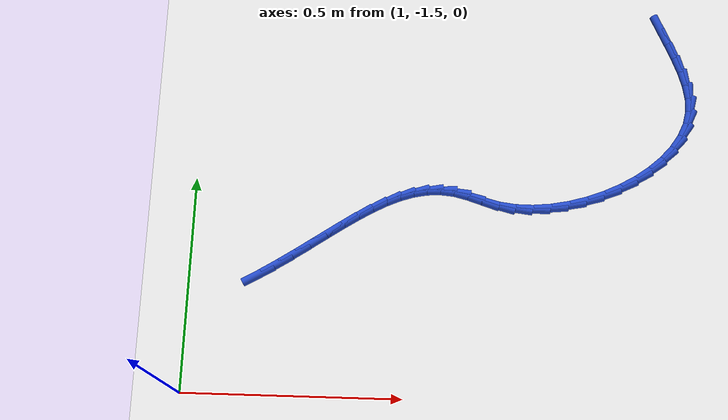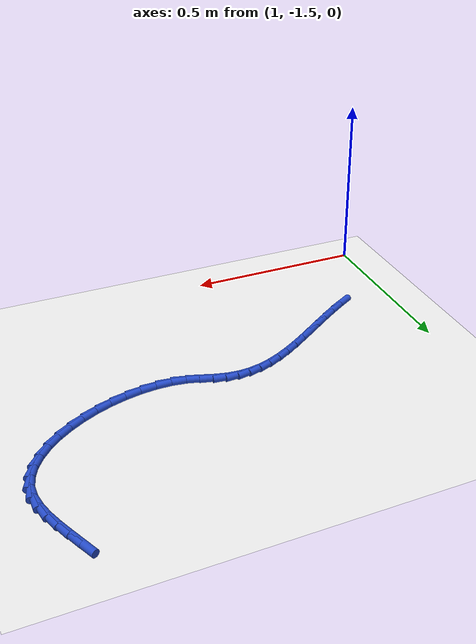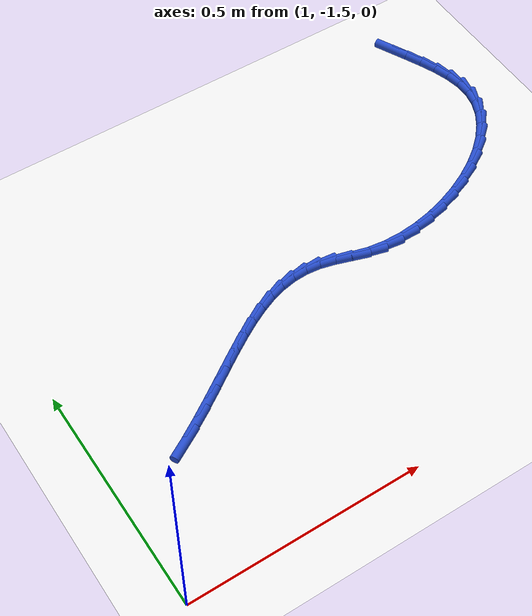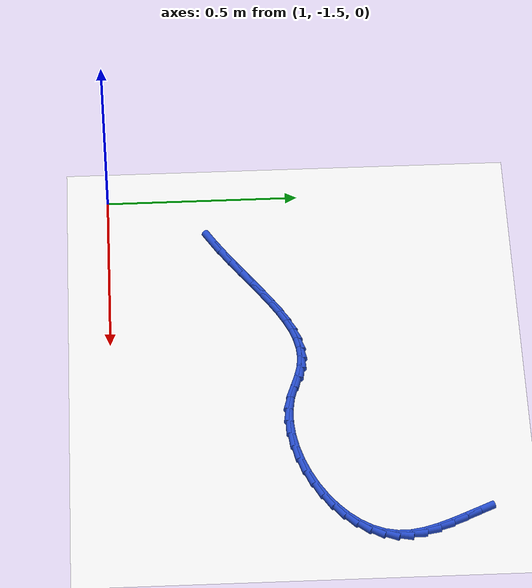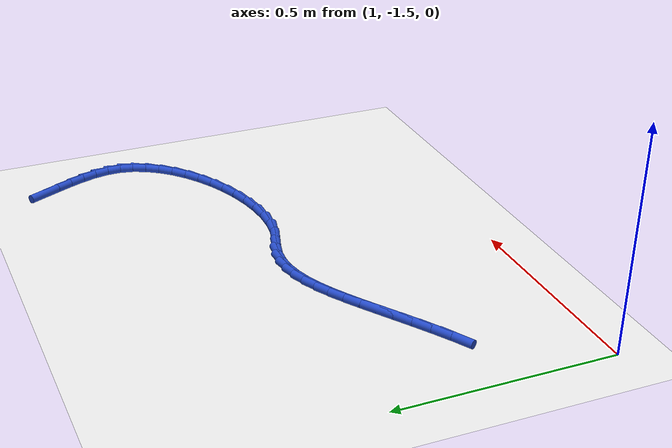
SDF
<sdf version="1.6">
 <world name="default">
  <model name="ground_plane">
   <static>1</static>
   <link name="link">
    <collision name="collision">
     <geometry><plane><normal>0 0 1</normal><size>100 100</size></plane></geometry>
     <surface><friction><ode><mu>100</mu><mu2>50</mu2></ode></friction></surface>
    </collision>
    <visual name="visual">
     <cast_shadows>0</cast_shadows>
     <geometry><plane><normal>0 0 1</normal><size>100 100</size></plane></geometry>
     <material>
      <script><uri>file://media/materials/scripts/gazebo.material</uri><name>Gazebo/WhiteGlow</name></script>
     </material>
    </visual>
   </link>
  </model>
  <model name="line">
   <link name="link_130">
    <pose>2.089215972137951 -0.5968230778722998 0.01 0 1.57 -1.1241798583666875</pose>
    <collision name="collision">
     <geometry><cylinder><radius>0.01</radius><length>0.08</length></cylinder></geometry>
    </collision>
    <visual name="visual">
     <material>
      <script><name>Gazebo/Blue</name><uri>file://media/materials/scripts/gazebo.material</uri></script>
     </material>
     <geometry><cylinder><radius>0.01</radius><length>0.08</length></cylinder></geometry>
    </visual>
   </link>
   <link name="link_131">
    <pose>2.1061117623679078 -0.6321043164096497 0.01 0 1.57 -1.136243983887016</pose>
    <collision name="collision">
     <geometry><cylinder><radius>0.01</radius><length>0.08</length></cylinder></geometry>
    </collision>
    <visual name="visual">
     <material>
      <script><name>Gazebo/Blue</name><uri>file://media/materials/scripts/gazebo.material</uri></script>
     </material>
     <geometry><cylinder><radius>0.01</radius><length>0.08</length></cylinder></geometry>
    </visual>
   </link>
   <link name="link_132">
    <pose>2.1223979107732553 -0.6671930024674196 0.01 0 1.57 -1.1799691211059193</pose>
    <collision name="collision">
     <geometry><cylinder><radius>0.01</radius><length>0.08</length></cylinder></geometry>
    </collision>
    <visual name="visual">
     <material>
      <script><name>Gazebo/Blue</name><uri>file://media/materials/scripts/gazebo.material</uri></script>
     </material>
     <geometry><cylinder><radius>0.01</radius><length>0.08</length></cylinder></geometry>
    </visual>
   </link>
   <link name="link_133">
    <pose>2.136724973011037 -0.7019655500433608 0.01 0 1.57 -1.2602473868754152</pose>
    <collision name="collision">
     <geometry><cylinder><radius>0.01</radius><length>0.08</length></cylinder></geometry>
    </collision>
    <visual name="visual">
     <material>
      <script><name>Gazebo/Blue</name><uri>file://media/materials/scripts/gazebo.material</uri></script>
     </material>
     <geometry><cylinder><radius>0.01</radius><length>0.08</length></cylinder></geometry>
    </visual>
   </link>
   <link name="link_134">
    <pose>2.1477435047382993 -0.7362983731352244 0.01 0 1.57 -1.384625393061261</pose>
    <collision name="collision">
     <geometry><cylinder><radius>0.01</radius><length>0.08</length></cylinder></geometry>
    </collision>
    <visual name="visual">
     <material>
      <script><name>Gazebo/Blue</name><uri>file://media/materials/scripts/gazebo.material</uri></script>
     </material>
     <geometry><cylinder><radius>0.01</radius><length>0.08</length></cylinder></geometry>
    </visual>
   </link>
   <link name="link_135">
    <pose>2.1541040616120846 -0.7700678857407617 0.01 0 1.57 -1.5601223140603784</pose>
    <collision name="collision">
     <geometry><cylinder><radius>0.01</radius><length>0.08</length></cylinder></geometry>
    </collision>
    <visual name="visual">
     <material>
      <script><name>Gazebo/Blue</name><uri>file://media/materials/scripts/gazebo.material</uri></script>
     </material>
     <geometry><cylinder><radius>0.01</radius><length>0.08</length></cylinder></geometry>
    </visual>
   </link>
   <link name="link_136">
    <pose>2.1544571992894372 -0.8031505018577216 0.01 0 1.57 1.3660202099657726</pose>
    <collision name="collision">
     <geometry><cylinder><radius>0.01</radius><length>0.08</length></cylinder></geometry>
    </collision>
    <visual name="visual">
     <material>
      <script><name>Gazebo/Blue</name><uri>file://media/materials/scripts/gazebo.material</uri></script>
     </material>
     <geometry><cylinder><radius>0.01</radius><length>0.08</length></cylinder></geometry>
    </visual>
   </link>
   <link name="link_137">
    <pose>2.1477600247797572 -0.8353969396648202 0.01 0 1.57 1.1639271393499315</pose>
    <collision name="collision">
     <geometry><cylinder><radius>0.01</radius><length>0.08</length></cylinder></geometry>
    </collision>
    <visual name="visual">
     <material>
      <script><name>Gazebo/Blue</name><uri>file://media/materials/scripts/gazebo.material</uri></script>
     </material>
     <geometry><cylinder><radius>0.01</radius><length>0.08</length></cylinder></geometry>
    </visual>
   </link>
   <link name="link_138">
    <pose>2.1343386812278524 -0.866543161674167 0.01 0 1.57 0.9920647110873635</pose>
    <collision name="collision">
     <geometry><cylinder><radius>0.01</radius><length>0.08</length></cylinder></geometry>
    </collision>
    <visual name="visual">
     <material>
      <script><name>Gazebo/Blue</name><uri>file://media/materials/scripts/gazebo.material</uri></script>
     </material>
     <geometry><cylinder><radius>0.01</radius><length>0.08</length></cylinder></geometry>
    </visual>
   </link>
   <link name="link_139">
    <pose>2.1149013421258456 -0.8962931077608979 0.01 0 1.57 0.848048861853763</pose>
    <collision name="collision">
     <geometry><cylinder><radius>0.01</radius><length>0.08</length></cylinder></geometry>
    </collision>
    <visual name="visual">
     <material>
      <script><name>Gazebo/Blue</name><uri>file://media/materials/scripts/gazebo.material</uri></script>
     </material>
     <geometry><cylinder><radius>0.01</radius><length>0.08</length></cylinder></geometry>
    </visual>
   </link>
   <link name="link_140">
    <pose>2.0901561979160848 -0.9243507163793396 0.01 0 1.57 0.7263563305340361</pose>
    <collision name="collision">
     <geometry><cylinder><radius>0.01</radius><length>0.08</length></cylinder></geometry>
    </collision>
    <visual name="visual">
     <material>
      <script><name>Gazebo/Blue</name><uri>file://media/materials/scripts/gazebo.material</uri></script>
     </material>
     <geometry><cylinder><radius>0.01</radius><length>0.08</length></cylinder></geometry>
    </visual>
   </link>
   <link name="link_141">
    <pose>2.0608114390409193 -0.9504199259838225 0.01 0 1.57 0.6211378481816621</pose>
    <collision name="collision">
     <geometry><cylinder><radius>0.01</radius><length>0.08</length></cylinder></geometry>
    </collision>
    <visual name="visual">
     <material>
      <script><name>Gazebo/Blue</name><uri>file://media/materials/scripts/gazebo.material</uri></script>
     </material>
     <geometry><cylinder><radius>0.01</radius><length>0.08</length></cylinder></geometry>
    </visual>
   </link>
   <link name="link_142">
    <pose>2.0275752559426965 -0.9742046750286747 0.01 0 1.57 0.5272457109900479</pose>
    <collision name="collision">
     <geometry><cylinder><radius>0.01</radius><length>0.08</length></cylinder></geometry>
    </collision>
    <visual name="visual">
     <material>
      <script><name>Gazebo/Blue</name><uri>file://media/materials/scripts/gazebo.material</uri></script>
     </material>
     <geometry><cylinder><radius>0.01</radius><length>0.08</length></cylinder></geometry>
    </visual>
   </link>
   <link name="link_143">
    <pose>1.9911558390637654 -0.995408901968226 0.01 0 1.57 0.4403553833864005</pose>
    <collision name="collision">
     <geometry><cylinder><radius>0.01</radius><length>0.08</length></cylinder></geometry>
    </collision>
    <visual name="visual">
     <material>
      <script><name>Gazebo/Blue</name><uri>file://media/materials/scripts/gazebo.material</uri></script>
     </material>
     <geometry><cylinder><radius>0.01</radius><length>0.08</length></cylinder></geometry>
    </visual>
   </link>
   <link name="link_144">
    <pose>1.9522613788464767 -1.0137365452568046 0.01 0 1.57 0.35676408208084676</pose>
    <collision name="collision">
     <geometry><cylinder><radius>0.01</radius><length>0.08</length></cylinder></geometry>
    </collision>
    <visual name="visual">
     <material>
      <script><name>Gazebo/Blue</name><uri>file://media/materials/scripts/gazebo.material</uri></script>
     </material>
     <geometry><cylinder><radius>0.01</radius><length>0.08</length></cylinder></geometry>
    </visual>
   </link>
   <link name="link_145">
    <pose>1.9116000657331778 -1.0288915433487391 0.01 0 1.57 0.27311312557365297</pose>
    <collision name="collision">
     <geometry><cylinder><radius>0.01</radius><length>0.08</length></cylinder></geometry>
    </collision>
    <visual name="visual">
     <material>
      <script><name>Gazebo/Blue</name><uri>file://media/materials/scripts/gazebo.material</uri></script>
     </material>
     <geometry><cylinder><radius>0.01</radius><length>0.08</length></cylinder></geometry>
    </visual>
   </link>
   <link name="link_146">
    <pose>1.869880090166217 -1.0405778346983587 0.01 0 1.57 0.18611281220326056</pose>
    <collision name="collision">
     <geometry><cylinder><radius>0.01</radius><length>0.08</length></cylinder></geometry>
    </collision>
    <visual name="visual">
     <material>
      <script><name>Gazebo/Blue</name><uri>file://media/materials/scripts/gazebo.material</uri></script>
     </material>
     <geometry><cylinder><radius>0.01</radius><length>0.08</length></cylinder></geometry>
    </visual>
   </link>
   <link name="link_147">
    <pose>1.827809642587944 -1.0484993577599924 0.01 0 1.57 0.09229138606841489</pose>
    <collision name="collision">
     <geometry><cylinder><radius>0.01</radius><length>0.08</length></cylinder></geometry>
    </collision>
    <visual name="visual">
     <material>
      <script><name>Gazebo/Blue</name><uri>file://media/materials/scripts/gazebo.material</uri></script>
     </material>
     <geometry><cylinder><radius>0.01</radius><length>0.08</length></cylinder></geometry>
    </visual>
   </link>
   <link name="link_148">
    <pose>1.7860969134407059 -1.052360050987969 0.01 0 1.57 -0.012206945135747216</pose>
    <collision name="collision">
     <geometry><cylinder><radius>0.01</radius><length>0.08</length></cylinder></geometry>
    </collision>
    <visual name="visual">
     <material>
      <script><name>Gazebo/Blue</name><uri>file://media/materials/scripts/gazebo.material</uri></script>
     </material>
     <geometry><cylinder><radius>0.01</radius><length>0.08</length></cylinder></geometry>
    </visual>
   </link>
   <link name="link_149">
    <pose>1.7454500931668542 -1.0518638528366175 0.01 0 1.57 -0.13169513700295188</pose>
    <collision name="collision">
     <geometry><cylinder><radius>0.01</radius><length>0.08</length></cylinder></geometry>
    </collision>
    <visual name="visual">
     <material>
      <script><name>Gazebo/Blue</name><uri>file://media/materials/scripts/gazebo.material</uri></script>
     </material>
     <geometry><cylinder><radius>0.01</radius><length>0.08</length></cylinder></geometry>
    </visual>
   </link>
   <link name="link_150">
    <pose>1.7065773722087354 -1.0467147017602665 0.01 0 1.57 -0.26178943741562544</pose>
    <collision name="collision">
     <geometry><cylinder><radius>0.01</radius><length>0.08</length></cylinder></geometry>
    </collision>
    <visual name="visual">
     <material>
      <script><name>Gazebo/Blue</name><uri>file://media/materials/scripts/gazebo.material</uri></script>
     </material>
     <geometry><cylinder><radius>0.01</radius><length>0.08</length></cylinder></geometry>
    </visual>
   </link>
   <link name="link_151">
    <pose>1.6700922045528495 -1.036938919656732 0.01 0 1.57 -0.31810924481611935</pose>
    <collision name="collision">
     <geometry><cylinder><radius>0.01</radius><length>0.08</length></cylinder></geometry>
    </collision>
    <visual name="visual">
     <material>
      <script><name>Gazebo/Blue</name><uri>file://media/materials/scripts/gazebo.material</uri></script>
     </material>
     <geometry><cylinder><radius>0.01</radius><length>0.08</length></cylinder></geometry>
    </visual>
   </link>
   <link name="link_152">
    <pose>1.6357104566583573 -1.0256172740994454 0.01 0 1.57 -0.2441461090553572</pose>
    <collision name="collision">
     <geometry><cylinder><radius>0.01</radius><length>0.08</length></cylinder></geometry>
    </collision>
    <visual name="visual">
     <material>
      <script><name>Gazebo/Blue</name><uri>file://media/materials/scripts/gazebo.material</uri></script>
     </material>
     <geometry><cylinder><radius>0.01</radius><length>0.08</length></cylinder></geometry>
    </visual>
   </link>
   <link name="link_153">
    <pose>1.602666353711055 -1.0173854727267573 0.01 0 1.57 -0.09557018609459211</pose>
    <collision name="collision">
     <geometry><cylinder><radius>0.01</radius><length>0.08</length></cylinder></geometry>
    </collision>
    <visual name="visual">
     <material>
      <script><name>Gazebo/Blue</name><uri>file://media/materials/scripts/gazebo.material</uri></script>
     </material>
     <geometry><cylinder><radius>0.01</radius><length>0.08</length></cylinder></geometry>
    </visual>
   </link>
   <link name="link_154">
    <pose>1.5704577668220494 -1.0142978860321434 0.01 0 1.57 0.05399321010858592</pose>
    <collision name="collision">
     <geometry><cylinder><radius>0.01</radius><length>0.08</length></cylinder></geometry>
    </collision>
    <visual name="visual">
     <material>
      <script><name>Gazebo/Blue</name><uri>file://media/materials/scripts/gazebo.material</uri></script>
     </material>
     <geometry><cylinder><radius>0.01</radius><length>0.08</length></cylinder></geometry>
    </visual>
   </link>
   <link name="link_155">
    <pose>1.5388309907719027 -1.016007178533911 0.01 0 1.57 0.19157391071734223</pose>
    <collision name="collision">
     <geometry><cylinder><radius>0.01</radius><length>0.08</length></cylinder></geometry>
    </collision>
    <visual name="visual">
     <material>
      <script><name>Gazebo/Blue</name><uri>file://media/materials/scripts/gazebo.material</uri></script>
     </material>
     <geometry><cylinder><radius>0.01</radius><length>0.08</length></cylinder></geometry>
    </visual>
   </link>
   <link name="link_156">
    <pose>1.507541649425361 -1.022075823194625 0.01 0 1.57 0.30992564221829066</pose>
    <collision name="collision">
     <geometry><cylinder><radius>0.01</radius><length>0.08</length></cylinder></geometry>
    </collision>
    <visual name="visual">
     <material>
      <script><name>Gazebo/Blue</name><uri>file://media/materials/scripts/gazebo.material</uri></script>
     </material>
     <geometry><cylinder><radius>0.01</radius><length>0.08</length></cylinder></geometry>
    </visual>
   </link>
   <link name="link_157">
    <pose>1.4763453666471733 -1.0320662929768494 0.01 0 1.57 0.4059715084917052</pose>
    <collision name="collision">
     <geometry><cylinder><radius>0.01</radius><length>0.08</length></cylinder></geometry>
    </collision>
    <visual name="visual">
     <material>
      <script><name>Gazebo/Blue</name><uri>file://media/materials/scripts/gazebo.material</uri></script>
     </material>
     <geometry><cylinder><radius>0.01</radius><length>0.08</length></cylinder></geometry>
    </visual>
   </link>
   <link name="link_158">
    <pose>1.4449977663020854 -1.0455410608431488 0.01 0 1.57 0.47989182691456383</pose>
    <collision name="collision">
     <geometry><cylinder><radius>0.01</radius><length>0.08</length></cylinder></geometry>
    </collision>
    <visual name="visual">
     <material>
      <script><name>Gazebo/Blue</name><uri>file://media/materials/scripts/gazebo.material</uri></script>
     </material>
     <geometry><cylinder><radius>0.01</radius><length>0.08</length></cylinder></geometry>
    </visual>
   </link>
   <link name="link_159">
    <pose>1.4132544722548455 -1.0620625997560886 0.01 0 1.57 0.5335973785867012</pose>
    <collision name="collision">
     <geometry><cylinder><radius>0.01</radius><length>0.08</length></cylinder></geometry>
    </collision>
    <visual name="visual">
     <material>
      <script><name>Gazebo/Blue</name><uri>file://media/materials/scripts/gazebo.material</uri></script>
     </material>
     <geometry><cylinder><radius>0.01</radius><length>0.08</length></cylinder></geometry>
    </visual>
   </link>
   <link name="link_160">
    <pose>1.380871108370199 -1.0811933826782332 0.01 0 1.57 0.5695498915555235</pose>
    <collision name="collision">
     <geometry><cylinder><radius>0.01</radius><length>0.08</length></cylinder></geometry>
    </collision>
    <visual name="visual">
     <material>
      <script><name>Gazebo/Blue</name><uri>file://media/materials/scripts/gazebo.material</uri></script>
     </material>
     <geometry><cylinder><radius>0.01</radius><length>0.08</length></cylinder></geometry>
    </visual>
   </link>
   <link name="link_161">
    <pose>1.3476032985128947 -1.102495882572146 0.01 0 1.57 0.5901250618509946</pose>
    <collision name="collision">
     <geometry><cylinder><radius>0.01</radius><length>0.08</length></cylinder></geometry>
    </collision>
    <visual name="visual">
     <material>
      <script><name>Gazebo/Blue</name><uri>file://media/materials/scripts/gazebo.material</uri></script>
     </material>
     <geometry><cylinder><radius>0.01</radius><length>0.08</length></cylinder></geometry>
    </visual>
   </link>
   <link name="link_162">
    <pose>1.3132066665476796 -1.125532572400393 0.01 0 1.57 0.597365282741359</pose>
    <collision name="collision">
     <geometry><cylinder><radius>0.01</radius><length>0.08</length></cylinder></geometry>
    </collision>
    <visual name="visual">
     <material>
      <script><name>Gazebo/Blue</name><uri>file://media/materials/scripts/gazebo.material</uri></script>
     </material>
     <geometry><cylinder><radius>0.01</radius><length>0.08</length></cylinder></geometry>
    </visual>
   </link>
   <link name="link_163">
    <pose>1.2774368363393007 -1.1498659251255383 0.01 0 1.57 0.5929405545008293</pose>
    <collision name="collision">
     <geometry><cylinder><radius>0.01</radius><length>0.08</length></cylinder></geometry>
    </collision>
    <visual name="visual">
     <material>
      <script><name>Gazebo/Blue</name><uri>file://media/materials/scripts/gazebo.material</uri></script>
     </material>
     <geometry><cylinder><radius>0.01</radius><length>0.08</length></cylinder></geometry>
    </visual>
   </link>
   <link name="link_164">
    <pose>1.2400494317525048 -1.1750584137101465 0.01 0 1.57 0.5782003666715143</pose>
    <collision name="collision">
     <geometry><cylinder><radius>0.01</radius><length>0.08</length></cylinder></geometry>
    </collision>
    <visual name="visual">
     <material>
      <script><name>Gazebo/Blue</name><uri>file://media/materials/scripts/gazebo.material</uri></script>
     </material>
     <geometry><cylinder><radius>0.01</radius><length>0.08</length></cylinder></geometry>
    </visual>
   </link>
   <link name="link_165">
    <pose>1.200800269426744 -1.200672391803568 0.01 0 1.57 0.5542560918657019</pose>
    <collision name="collision">
     <geometry><cylinder><radius>0.01</radius><length>0.08</length></cylinder></geometry>
    </collision>
    <visual name="visual">
     <material>
      <script><name>Gazebo/Blue</name><uri>file://media/materials/scripts/gazebo.material</uri></script>
     </material>
     <geometry><cylinder><radius>0.01</radius><length>0.08</length></cylinder></geometry>
    </visual>
   </link>
   <link name="link_166">
    <pose>1.159772858300701 -1.226067395877003 0.01 0 1.57 0.5205087434815665</pose>
    <collision name="collision">
     <geometry><cylinder><radius>0.01</radius><length>0.08</length></cylinder></geometry>
    </collision>
    <visual name="visual">
     <material>
      <script><name>Gazebo/Blue</name><uri>file://media/materials/scripts/gazebo.material</uri></script>
     </material>
     <geometry><cylinder><radius>0.01</radius><length>0.08</length></cylinder></geometry>
    </visual>
   </link>
  </model>
 </world>
</sdf>
